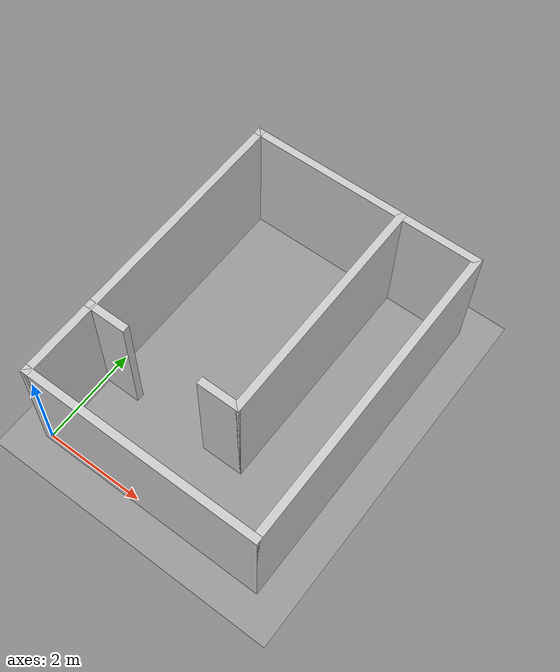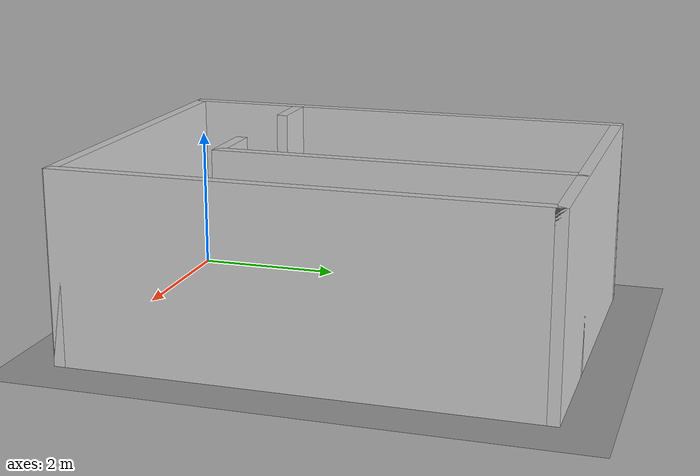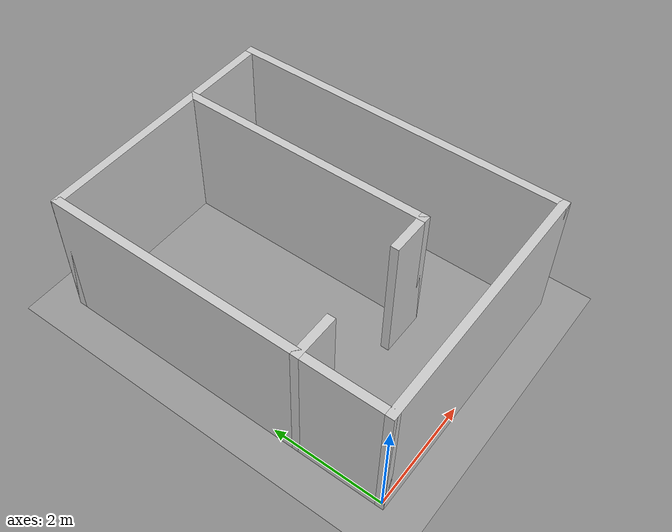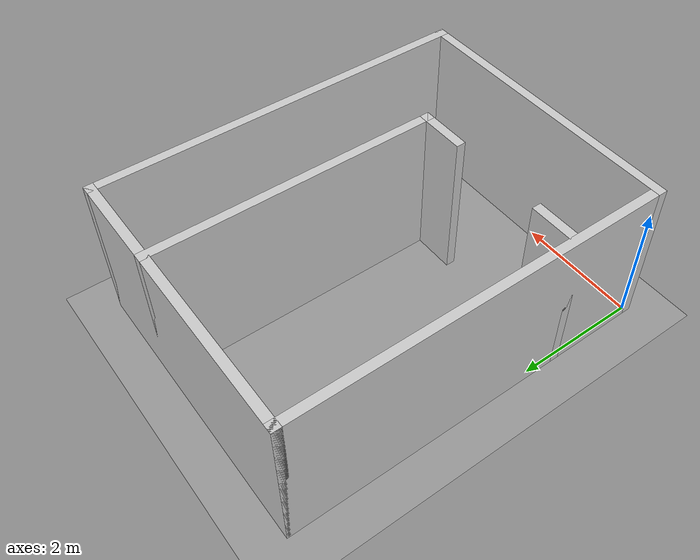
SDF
<?xml version="1.0" ?>
<sdf version="1.9">
  <world name="room_and_hallway">

    <physics name="1ms" type="ignored">
      <max_step_size>0.001</max_step_size>
      <real_time_factor>1.0</real_time_factor>
    </physics>

    <plugin filename="gz-sim-physics-system" name="gz::sim::systems::Physics"/>
    <plugin filename="gz-sim-user-commands-system" name="gz::sim::systems::UserCommands"/>
    <plugin filename="gz-sim-scene-broadcaster-system" name="gz::sim::systems::SceneBroadcaster"/>
    <plugin filename="gz-sim-sensors-system" name="gz::sim::systems::Sensors">
      <render_engine>ogre2</render_engine>
    </plugin>
    <plugin filename="gz-sim-contact-system" name="gz::sim::systems::Contact"/>
    <plugin filename="gz-sim-imu-system" name="gz::sim::systems::Imu"/>

    <light type="directional" name="sun">
      <cast_shadows>true</cast_shadows>
      <pose>0 0 10 0 0 0</pose>
      <diffuse>0.8 0.8 0.8 1</diffuse>
      <specular>0.2 0.2 0.2 1</specular>
      <attenuation>
        <range>1000</range>
        <constant>0.9</constant>
        <linear>0.01</linear>
        <quadratic>0.001</quadratic>
      </attenuation>
      <direction>-0.5 0.1 -0.9</direction>
    </light>

    <model name="ground_plane">
      <static>true</static>
      <link name="link">
        <collision name="collision">
          <geometry><plane><normal>0 0 1</normal><size>30 30</size></plane></geometry>
          <surface><friction><ode><mu>100</mu><mu2>50</mu2></ode></friction></surface>
        </collision>
        <visual name="visual">
          <geometry><plane><normal>0 0 1</normal><size>30 30</size></plane></geometry>
          <material><ambient>0.6 0.6 0.6 1</ambient><diffuse>0.6 0.6 0.6 1</diffuse></material>
        </visual>
      </link>
    </model>

    <model name="building">
      <static>true</static>

    <link name="north_wall_link">
      <pose>2.2860 6.0960 1.2500 0 0 0</pose>
      <collision name="north_wall_collision">
        <geometry><box><size>4.7220 0.1500 2.5000</size></box></geometry>
      </collision>
      <visual name="north_wall_visual">
        <geometry><box><size>4.7220 0.1500 2.5000</size></box></geometry>
        <material>
          <ambient>0.8 0.8 0.8 1</ambient>
          <diffuse>0.8 0.8 0.8 1</diffuse>
          <specular>0.2 0.2 0.2 1</specular>
        </material>
      </visual>
    </link>

    <link name="south_wall_link">
      <pose>2.2860 0.0000 1.2500 0 0 0</pose>
      <collision name="south_wall_collision">
        <geometry><box><size>4.7220 0.1500 2.5000</size></box></geometry>
      </collision>
      <visual name="south_wall_visual">
        <geometry><box><size>4.7220 0.1500 2.5000</size></box></geometry>
        <material>
          <ambient>0.8 0.8 0.8 1</ambient>
          <diffuse>0.8 0.8 0.8 1</diffuse>
          <specular>0.2 0.2 0.2 1</specular>
        </material>
      </visual>
    </link>

    <link name="west_wall_link">
      <pose>0.0000 3.0480 1.2500 0 0 0</pose>
      <collision name="west_wall_collision">
        <geometry><box><size>0.1500 6.2460 2.5000</size></box></geometry>
      </collision>
      <visual name="west_wall_visual">
        <geometry><box><size>0.1500 6.2460 2.5000</size></box></geometry>
        <material>
          <ambient>0.8 0.8 0.8 1</ambient>
          <diffuse>0.8 0.8 0.8 1</diffuse>
          <specular>0.2 0.2 0.2 1</specular>
        </material>
      </visual>
    </link>

    <link name="east_wall_link">
      <pose>4.5720 3.0480 1.2500 0 0 0</pose>
      <collision name="east_wall_collision">
        <geometry><box><size>0.1500 6.2460 2.5000</size></box></geometry>
      </collision>
      <visual name="east_wall_visual">
        <geometry><box><size>0.1500 6.2460 2.5000</size></box></geometry>
        <material>
          <ambient>0.8 0.8 0.8 1</ambient>
          <diffuse>0.8 0.8 0.8 1</diffuse>
          <specular>0.2 0.2 0.2 1</specular>
        </material>
      </visual>
    </link>

    <link name="room_east_wall_link">
      <pose>3.0480 3.8100 1.2500 0 0 0</pose>
      <collision name="room_east_wall_collision">
        <geometry><box><size>0.1500 4.7220 2.5000</size></box></geometry>
      </collision>
      <visual name="room_east_wall_visual">
        <geometry><box><size>0.1500 4.7220 2.5000</size></box></geometry>
        <material>
          <ambient>0.8 0.8 0.8 1</ambient>
          <diffuse>0.8 0.8 0.8 1</diffuse>
          <specular>0.2 0.2 0.2 1</specular>
        </material>
      </visual>
    </link>

    <link name="room_south_wall_west_link">
      <pose>0.3435 1.5240 1.2500 0 0 0</pose>
      <collision name="room_south_wall_west_collision">
        <geometry><box><size>0.8370 0.1500 2.5000</size></box></geometry>
      </collision>
      <visual name="room_south_wall_west_visual">
        <geometry><box><size>0.8370 0.1500 2.5000</size></box></geometry>
        <material>
          <ambient>0.8 0.8 0.8 1</ambient>
          <diffuse>0.8 0.8 0.8 1</diffuse>
          <specular>0.2 0.2 0.2 1</specular>
        </material>
      </visual>
    </link>

    <link name="room_south_wall_east_link">
      <pose>2.7045 1.5240 1.2500 0 0 0</pose>
      <collision name="room_south_wall_east_collision">
        <geometry><box><size>0.8370 0.1500 2.5000</size></box></geometry>
      </collision>
      <visual name="room_south_wall_east_visual">
        <geometry><box><size>0.8370 0.1500 2.5000</size></box></geometry>
        <material>
          <ambient>0.8 0.8 0.8 1</ambient>
          <diffuse>0.8 0.8 0.8 1</diffuse>
          <specular>0.2 0.2 0.2 1</specular>
        </material>
      </visual>
    </link>
    </model>

  </world>
</sdf>
